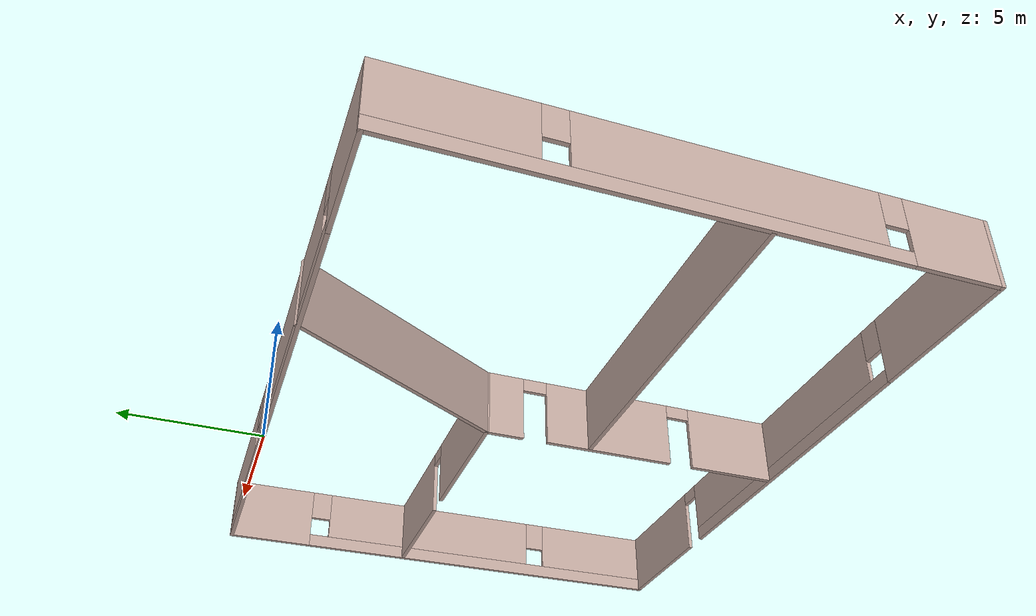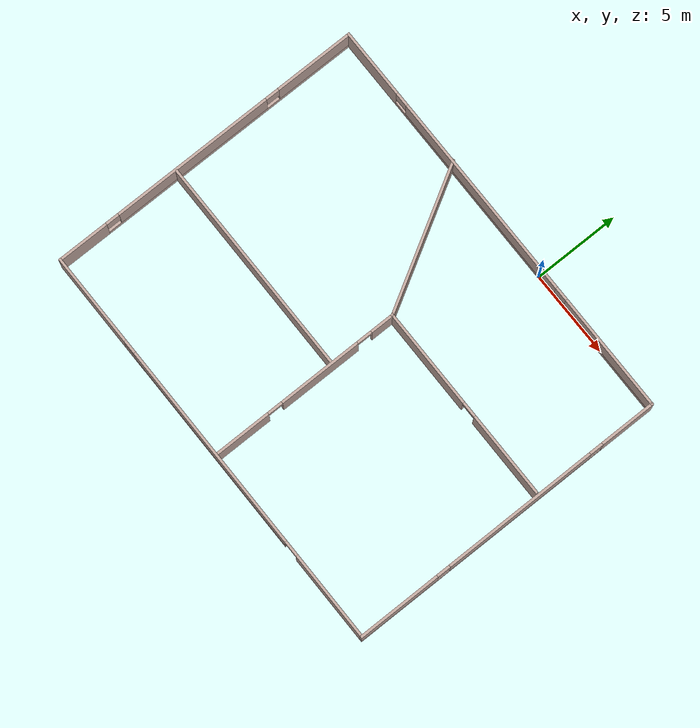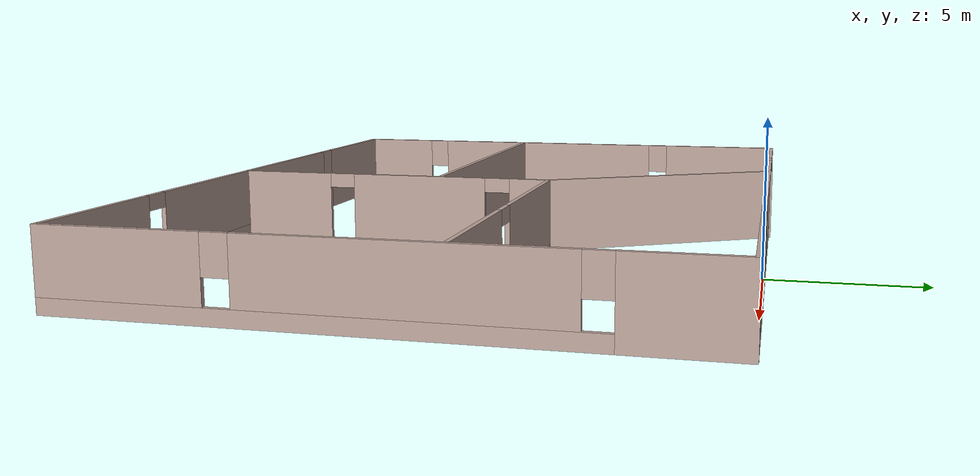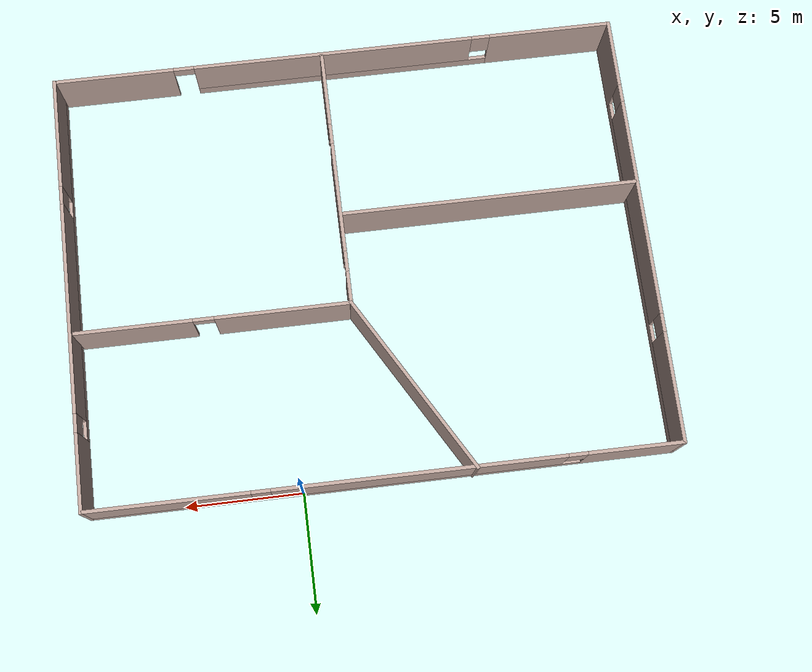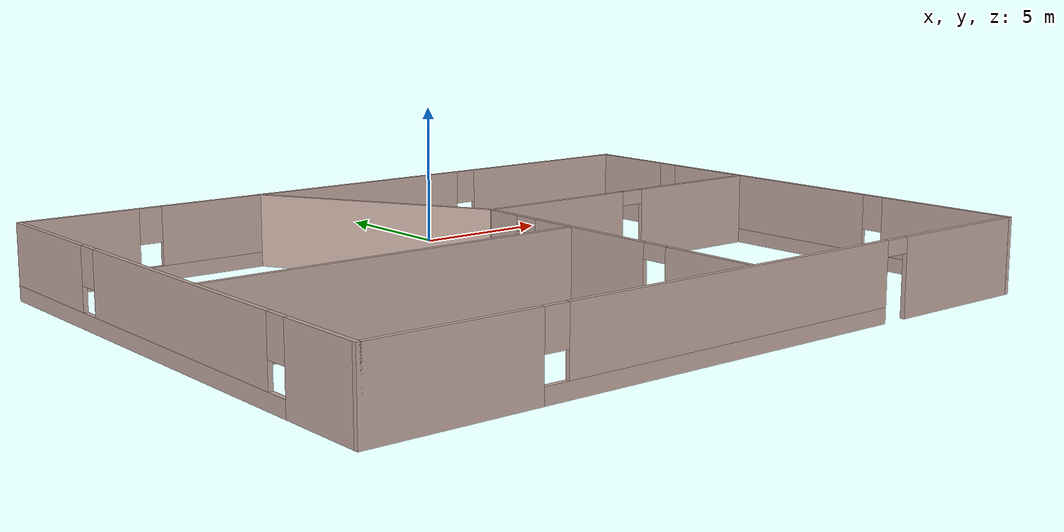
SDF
<?xml version='1.0'?>
<sdf version='1.7'>
  <model name='warehouse'>
    <pose>-3.39144 -9.38914 0 0 -0 0</pose>
    <link name='Wall_17'>
      <pose>-0.07754 -9.45806 0 0 -0 0</pose>
      <visual name='Wall_17_Visual_0'>
        <pose>-9.59338 0 1.25 0 -0 0</pose>
        <geometry>
          <box>
            <size>5.40816 0.15 2.5</size>
          </box>
        </geometry>
        <material>
          <script>
            <uri>file://media/materials/scripts/gazebo.material</uri>
            <name>Gazebo/Grey</name>
          </script>
          <ambient>0.760784 0.662745 0.627451 1</ambient>
        </material>
        <meta>
          <layer>0</layer>
        </meta>
      </visual>
      <collision name='Wall_17_Collision_0'>
        <geometry>
          <box>
            <size>5.40816 0.15 2.5</size>
          </box>
        </geometry>
        <pose>-9.59338 0 1.25 0 -0 0</pose>
      </collision>
      <visual name='Wall_17_Visual_1'>
        <pose>9.7201 0 1.25 0 -0 0</pose>
        <geometry>
          <box>
            <size>5.15472 0.15 2.5</size>
          </box>
        </geometry>
        <material>
          <script>
            <uri>file://media/materials/scripts/gazebo.material</uri>
            <name>Gazebo/Grey</name>
          </script>
          <ambient>0.760784 0.662745 0.627451 1</ambient>
        </material>
        <meta>
          <layer>0</layer>
        </meta>
      </visual>
      <collision name='Wall_17_Collision_1'>
        <geometry>
          <box>
            <size>5.15472 0.15 2.5</size>
          </box>
        </geometry>
        <pose>9.7201 0 1.25 0 -0 0</pose>
      </collision>
      <visual name='Wall_17_Visual_2'>
        <pose>-0.323279 0 0.25 0 -0 0</pose>
        <geometry>
          <box>
            <size>13.132 0.15 0.5</size>
          </box>
        </geometry>
        <material>
          <script>
            <uri>file://media/materials/scripts/gazebo.material</uri>
            <name>Gazebo/Grey</name>
          </script>
          <ambient>0.760784 0.662745 0.627451 1</ambient>
        </material>
        <meta>
          <layer>0</layer>
        </meta>
      </visual>
      <collision name='Wall_17_Collision_2'>
        <geometry>
          <box>
            <size>13.132 0.15 0.5</size>
          </box>
        </geometry>
        <pose>-0.323279 0 0.25 0 -0 0</pose>
      </collision>
      <visual name='Wall_17_Visual_3'>
        <pose>0.076721 0 1.5 0 -0 0</pose>
        <geometry>
          <box>
            <size>12.332 0.15 2</size>
          </box>
        </geometry>
        <material>
          <script>
            <uri>file://media/materials/scripts/gazebo.material</uri>
            <name>Gazebo/Grey</name>
          </script>
          <ambient>0.760784 0.662745 0.627451 1</ambient>
        </material>
        <meta>
          <layer>0</layer>
        </meta>
      </visual>
      <collision name='Wall_17_Collision_3'>
        <geometry>
          <box>
            <size>12.332 0.15 2</size>
          </box>
        </geometry>
        <pose>0.076721 0 1.5 0 -0 0</pose>
      </collision>
      <visual name='Wall_17_Visual_4'>
        <pose>-6.4893 0 1.9 0 -0 0</pose>
        <geometry>
          <box>
            <size>0.8 0.15 1.2</size>
          </box>
        </geometry>
        <material>
          <script>
            <uri>file://media/materials/scripts/gazebo.material</uri>
            <name>Gazebo/Grey</name>
          </script>
          <ambient>0.760784 0.662745 0.627451 1</ambient>
        </material>
        <meta>
          <layer>0</layer>
        </meta>
      </visual>
      <collision name='Wall_17_Collision_4'>
        <geometry>
          <box>
            <size>0.8 0.15 1.2</size>
          </box>
        </geometry>
        <pose>-6.4893 0 1.9 0 -0 0</pose>
      </collision>
      <visual name='Wall_17_Visual_5'>
        <pose>6.69274 0 2.25 0 -0 0</pose>
        <geometry>
          <box>
            <size>0.9 0.15 0.5</size>
          </box>
        </geometry>
        <material>
          <script>
            <uri>file://media/materials/scripts/gazebo.material</uri>
            <name>Gazebo/Grey</name>
          </script>
          <ambient>0.760784 0.662745 0.627451 1</ambient>
        </material>
        <meta>
          <layer>0</layer>
        </meta>
      </visual>
      <collision name='Wall_17_Collision_5'>
        <geometry>
          <box>
            <size>0.9 0.15 0.5</size>
          </box>
        </geometry>
        <pose>6.69274 0 2.25 0 -0 0</pose>
      </collision>
    </link>
    <link name='Wall_24'>
      <pose>-12.3 -0.033057 0 0 -0 1.5708</pose>
      <visual name='Wall_24_Visual_0'>
        <pose>-7.9774 0 1.25 0 -0 0</pose>
        <geometry>
          <box>
            <size>3.0452 0.15 2.5</size>
          </box>
        </geometry>
        <material>
          <script>
            <uri>file://media/materials/scripts/gazebo.material</uri>
            <name>Gazebo/Grey</name>
          </script>
          <ambient>0.760784 0.662745 0.627451 1</ambient>
        </material>
        <meta>
          <layer>0</layer>
        </meta>
      </visual>
      <collision name='Wall_24_Collision_0'>
        <geometry>
          <box>
            <size>3.0452 0.15 2.5</size>
          </box>
        </geometry>
        <pose>-7.9774 0 1.25 0 -0 0</pose>
      </collision>
      <visual name='Wall_24_Visual_1'>
        <pose>1.5226 0 0.25 0 -0 0</pose>
        <geometry>
          <box>
            <size>15.9548 0.15 0.5</size>
          </box>
        </geometry>
        <material>
          <script>
            <uri>file://media/materials/scripts/gazebo.material</uri>
            <name>Gazebo/Grey</name>
          </script>
          <ambient>0.760784 0.662745 0.627451 1</ambient>
        </material>
        <meta>
          <layer>0</layer>
        </meta>
      </visual>
      <collision name='Wall_24_Collision_1'>
        <geometry>
          <box>
            <size>15.9548 0.15 0.5</size>
          </box>
        </geometry>
        <pose>1.5226 0 0.25 0 -0 0</pose>
      </collision>
      <visual name='Wall_24_Visual_2'>
        <pose>-0.839888 0 1.5 0 -0 0</pose>
        <geometry>
          <box>
            <size>9.62982 0.15 2</size>
          </box>
        </geometry>
        <material>
          <script>
            <uri>file://media/materials/scripts/gazebo.material</uri>
            <name>Gazebo/Grey</name>
          </script>
          <ambient>0.760784 0.662745 0.627451 1</ambient>
        </material>
        <meta>
          <layer>0</layer>
        </meta>
      </visual>
      <collision name='Wall_24_Collision_2'>
        <geometry>
          <box>
            <size>9.62982 0.15 2</size>
          </box>
        </geometry>
        <pose>-0.839888 0 1.5 0 -0 0</pose>
      </collision>
      <visual name='Wall_24_Visual_3'>
        <pose>7.13751 0 1.5 0 -0 0</pose>
        <geometry>
          <box>
            <size>4.72498 0.15 2</size>
          </box>
        </geometry>
        <material>
          <script>
            <uri>file://media/materials/scripts/gazebo.material</uri>
            <name>Gazebo/Grey</name>
          </script>
          <ambient>0.760784 0.662745 0.627451 1</ambient>
        </material>
        <meta>
          <layer>0</layer>
        </meta>
      </visual>
      <collision name='Wall_24_Collision_3'>
        <geometry>
          <box>
            <size>4.72498 0.15 2</size>
          </box>
        </geometry>
        <pose>7.13751 0 1.5 0 -0 0</pose>
      </collision>
      <visual name='Wall_24_Visual_4'>
        <pose>-6.0548 0 1.9 0 -0 0</pose>
        <geometry>
          <box>
            <size>0.8 0.15 1.2</size>
          </box>
        </geometry>
        <material>
          <script>
            <uri>file://media/materials/scripts/gazebo.material</uri>
            <name>Gazebo/Grey</name>
          </script>
          <ambient>0.760784 0.662745 0.627451 1</ambient>
        </material>
        <meta>
          <layer>0</layer>
        </meta>
      </visual>
      <collision name='Wall_24_Collision_4'>
        <geometry>
          <box>
            <size>0.8 0.15 1.2</size>
          </box>
        </geometry>
        <pose>-6.0548 0 1.9 0 -0 0</pose>
      </collision>
      <visual name='Wall_24_Visual_5'>
        <pose>4.37502 0 1.9 0 -0 0</pose>
        <geometry>
          <box>
            <size>0.8 0.15 1.2</size>
          </box>
        </geometry>
        <material>
          <script>
            <uri>file://media/materials/scripts/gazebo.material</uri>
            <name>Gazebo/Grey</name>
          </script>
          <ambient>0.760784 0.662745 0.627451 1</ambient>
        </material>
        <meta>
          <layer>0</layer>
        </meta>
      </visual>
      <collision name='Wall_24_Collision_5'>
        <geometry>
          <box>
            <size>0.8 0.15 1.2</size>
          </box>
        </geometry>
        <pose>4.37502 0 1.9 0 -0 0</pose>
      </collision>
    </link>
    <link name='Wall_25'>
      <pose>0 9.39194 0 0 -0 0</pose>
      <visual name='Wall_25_Visual_0'>
        <pose>-10.349 0 1.25 0 -0 0</pose>
        <geometry>
          <box>
            <size>4.05199 0.15 2.5</size>
          </box>
        </geometry>
        <material>
          <script>
            <uri>file://media/materials/scripts/gazebo.material</uri>
            <name>Gazebo/Grey</name>
          </script>
          <ambient>0.760784 0.662745 0.627451 1</ambient>
        </material>
        <meta>
          <layer>0</layer>
        </meta>
      </visual>
      <collision name='Wall_25_Collision_0'>
        <geometry>
          <box>
            <size>4.05199 0.15 2.5</size>
          </box>
        </geometry>
        <pose>-10.349 0 1.25 0 -0 0</pose>
      </collision>
      <visual name='Wall_25_Visual_1'>
        <pose>2.02599 0 0.25 0 -0 0</pose>
        <geometry>
          <box>
            <size>20.698 0.15 0.5</size>
          </box>
        </geometry>
        <material>
          <script>
            <uri>file://media/materials/scripts/gazebo.material</uri>
            <name>Gazebo/Grey</name>
          </script>
          <ambient>0.760784 0.662745 0.627451 1</ambient>
        </material>
        <meta>
          <layer>0</layer>
        </meta>
      </visual>
      <collision name='Wall_25_Collision_1'>
        <geometry>
          <box>
            <size>20.698 0.15 0.5</size>
          </box>
        </geometry>
        <pose>2.02599 0 0.25 0 -0 0</pose>
      </collision>
      <visual name='Wall_25_Visual_2'>
        <pose>-1.44049 0 1.5 0 -0 0</pose>
        <geometry>
          <box>
            <size>12.1651 0.15 2</size>
          </box>
        </geometry>
        <material>
          <script>
            <uri>file://media/materials/scripts/gazebo.material</uri>
            <name>Gazebo/Grey</name>
          </script>
          <ambient>0.760784 0.662745 0.627451 1</ambient>
        </material>
        <meta>
          <layer>0</layer>
        </meta>
      </visual>
      <collision name='Wall_25_Collision_2'>
        <geometry>
          <box>
            <size>12.1651 0.15 2</size>
          </box>
        </geometry>
        <pose>-1.44049 0 1.5 0 -0 0</pose>
      </collision>
      <visual name='Wall_25_Visual_3'>
        <pose>8.90852 0 1.5 0 -0 0</pose>
        <geometry>
          <box>
            <size>6.93296 0.15 2</size>
          </box>
        </geometry>
        <material>
          <script>
            <uri>file://media/materials/scripts/gazebo.material</uri>
            <name>Gazebo/Grey</name>
          </script>
          <ambient>0.760784 0.662745 0.627451 1</ambient>
        </material>
        <meta>
          <layer>0</layer>
        </meta>
      </visual>
      <collision name='Wall_25_Collision_3'>
        <geometry>
          <box>
            <size>6.93296 0.15 2</size>
          </box>
        </geometry>
        <pose>8.90852 0 1.5 0 -0 0</pose>
      </collision>
      <visual name='Wall_25_Visual_4'>
        <pose>-7.92302 0 1.9 0 -0 0</pose>
        <geometry>
          <box>
            <size>0.8 0.15 1.2</size>
          </box>
        </geometry>
        <material>
          <script>
            <uri>file://media/materials/scripts/gazebo.material</uri>
            <name>Gazebo/Grey</name>
          </script>
          <ambient>0.760784 0.662745 0.627451 1</ambient>
        </material>
        <meta>
          <layer>0</layer>
        </meta>
      </visual>
      <collision name='Wall_25_Collision_4'>
        <geometry>
          <box>
            <size>0.8 0.15 1.2</size>
          </box>
        </geometry>
        <pose>-7.92302 0 1.9 0 -0 0</pose>
      </collision>
      <visual name='Wall_25_Visual_5'>
        <pose>5.04204 0 1.9 0 -0 0</pose>
        <geometry>
          <box>
            <size>0.8 0.15 1.2</size>
          </box>
        </geometry>
        <material>
          <script>
            <uri>file://media/materials/scripts/gazebo.material</uri>
            <name>Gazebo/Grey</name>
          </script>
          <ambient>0.760784 0.662745 0.627451 1</ambient>
        </material>
        <meta>
          <layer>0</layer>
        </meta>
      </visual>
      <collision name='Wall_25_Collision_5'>
        <geometry>
          <box>
            <size>0.8 0.15 1.2</size>
          </box>
        </geometry>
        <pose>5.04204 0 1.9 0 -0 0</pose>
      </collision>
    </link>
    <link name='Wall_26'>
      <pose>12.3 -0.033057 0 0 -0 -1.5708</pose>
      <visual name='Wall_26_Visual_0'>
        <pose>-7.83553 0 1.25 0 -0 0</pose>
        <geometry>
          <box>
            <size>3.32894 0.15 2.5</size>
          </box>
        </geometry>
        <material>
          <script>
            <uri>file://media/materials/scripts/gazebo.material</uri>
            <name>Gazebo/Grey</name>
          </script>
          <ambient>0.760784 0.662745 0.627451 1</ambient>
        </material>
        <meta>
          <layer>0</layer>
        </meta>
      </visual>
      <collision name='Wall_26_Collision_0'>
        <geometry>
          <box>
            <size>3.32894 0.15 2.5</size>
          </box>
        </geometry>
        <pose>-7.83553 0 1.25 0 -0 0</pose>
      </collision>
      <visual name='Wall_26_Visual_1'>
        <pose>1.66447 0 0.25 0 -0 0</pose>
        <geometry>
          <box>
            <size>15.6711 0.15 0.5</size>
          </box>
        </geometry>
        <material>
          <script>
            <uri>file://media/materials/scripts/gazebo.material</uri>
            <name>Gazebo/Grey</name>
          </script>
          <ambient>0.760784 0.662745 0.627451 1</ambient>
        </material>
        <meta>
          <layer>0</layer>
        </meta>
      </visual>
      <collision name='Wall_26_Collision_1'>
        <geometry>
          <box>
            <size>15.6711 0.15 0.5</size>
          </box>
        </geometry>
        <pose>1.66447 0 0.25 0 -0 0</pose>
      </collision>
      <visual name='Wall_26_Visual_2'>
        <pose>-0.807457 0 1.5 0 -0 0</pose>
        <geometry>
          <box>
            <size>9.12721 0.15 2</size>
          </box>
        </geometry>
        <material>
          <script>
            <uri>file://media/materials/scripts/gazebo.material</uri>
            <name>Gazebo/Grey</name>
          </script>
          <ambient>0.760784 0.662745 0.627451 1</ambient>
        </material>
        <meta>
          <layer>0</layer>
        </meta>
      </visual>
      <collision name='Wall_26_Collision_2'>
        <geometry>
          <box>
            <size>9.12721 0.15 2</size>
          </box>
        </geometry>
        <pose>-0.807457 0 1.5 0 -0 0</pose>
      </collision>
      <visual name='Wall_26_Visual_3'>
        <pose>7.02808 0 1.5 0 -0 0</pose>
        <geometry>
          <box>
            <size>4.94385 0.15 2</size>
          </box>
        </geometry>
        <material>
          <script>
            <uri>file://media/materials/scripts/gazebo.material</uri>
            <name>Gazebo/Grey</name>
          </script>
          <ambient>0.760784 0.662745 0.627451 1</ambient>
        </material>
        <meta>
          <layer>0</layer>
        </meta>
      </visual>
      <collision name='Wall_26_Collision_3'>
        <geometry>
          <box>
            <size>4.94385 0.15 2</size>
          </box>
        </geometry>
        <pose>7.02808 0 1.5 0 -0 0</pose>
      </collision>
      <visual name='Wall_26_Visual_4'>
        <pose>-5.77106 0 1.9 0 -0 0</pose>
        <geometry>
          <box>
            <size>0.8 0.15 1.2</size>
          </box>
        </geometry>
        <material>
          <script>
            <uri>file://media/materials/scripts/gazebo.material</uri>
            <name>Gazebo/Grey</name>
          </script>
          <ambient>0.760784 0.662745 0.627451 1</ambient>
        </material>
        <meta>
          <layer>0</layer>
        </meta>
      </visual>
      <collision name='Wall_26_Collision_4'>
        <geometry>
          <box>
            <size>0.8 0.15 1.2</size>
          </box>
        </geometry>
        <pose>-5.77106 0 1.9 0 -0 0</pose>
      </collision>
      <visual name='Wall_26_Visual_5'>
        <pose>4.15615 0 1.9 0 -0 0</pose>
        <geometry>
          <box>
            <size>0.8 0.15 1.2</size>
          </box>
        </geometry>
        <material>
          <script>
            <uri>file://media/materials/scripts/gazebo.material</uri>
            <name>Gazebo/Grey</name>
          </script>
          <ambient>0.760784 0.662745 0.627451 1</ambient>
        </material>
        <meta>
          <layer>0</layer>
        </meta>
      </visual>
      <collision name='Wall_26_Collision_5'>
        <geometry>
          <box>
            <size>0.8 0.15 1.2</size>
          </box>
        </geometry>
        <pose>4.15615 0 1.9 0 -0 0</pose>
      </collision>
    </link>
    <link name='Wall_33'>
      <collision name='Wall_33_Collision'>
        <geometry>
          <box>
            <size>8.75 0.15 2.5</size>
          </box>
        </geometry>
        <pose>0 0 1.25 0 -0 0</pose>
      </collision>
      <visual name='Wall_33_Visual'>
        <pose>0 0 1.25 0 -0 0</pose>
        <geometry>
          <box>
            <size>8.75 0.15 2.5</size>
          </box>
        </geometry>
        <material>
          <script>
            <uri>file://media/materials/scripts/gazebo.material</uri>
            <name>Gazebo/Grey</name>
          </script>
          <ambient>0.760784 0.662745 0.627451 1</ambient>
        </material>
        <meta>
          <layer>0</layer>
        </meta>
      </visual>
      <pose>-1.63635 5.7067 0 0 -0 -1.0472</pose>
    </link>
    <link name='Wall_34'>
      <pose>6.31365 1.98279 0 0 -0 0</pose>
      <visual name='Wall_34_Visual_0'>
        <pose>-2.95666 0 1.25 0 -0 0</pose>
        <geometry>
          <box>
            <size>5.83669 0.15 2.5</size>
          </box>
        </geometry>
        <material>
          <script>
            <uri>file://media/materials/scripts/gazebo.material</uri>
            <name>Gazebo/Grey</name>
          </script>
          <ambient>0.760784 0.662745 0.627451 1</ambient>
        </material>
        <meta>
          <layer>0</layer>
        </meta>
      </visual>
      <collision name='Wall_34_Collision_0'>
        <geometry>
          <box>
            <size>5.83669 0.15 2.5</size>
          </box>
        </geometry>
        <pose>-2.95666 0 1.25 0 -0 0</pose>
      </collision>
      <visual name='Wall_34_Visual_1'>
        <pose>3.36834 0 1.25 0 -0 0</pose>
        <geometry>
          <box>
            <size>5.01331 0.15 2.5</size>
          </box>
        </geometry>
        <material>
          <script>
            <uri>file://media/materials/scripts/gazebo.material</uri>
            <name>Gazebo/Grey</name>
          </script>
          <ambient>0.760784 0.662745 0.627451 1</ambient>
        </material>
        <meta>
          <layer>0</layer>
        </meta>
      </visual>
      <collision name='Wall_34_Collision_1'>
        <geometry>
          <box>
            <size>5.01331 0.15 2.5</size>
          </box>
        </geometry>
        <pose>3.36834 0 1.25 0 -0 0</pose>
      </collision>
      <visual name='Wall_34_Visual_2'>
        <pose>0.411689 0 2.25 0 -0 0</pose>
        <geometry>
          <box>
            <size>0.9 0.15 0.5</size>
          </box>
        </geometry>
        <material>
          <script>
            <uri>file://media/materials/scripts/gazebo.material</uri>
            <name>Gazebo/Grey</name>
          </script>
          <ambient>0.760784 0.662745 0.627451 1</ambient>
        </material>
        <meta>
          <layer>0</layer>
        </meta>
      </visual>
      <collision name='Wall_34_Collision_2'>
        <geometry>
          <box>
            <size>0.9 0.15 0.5</size>
          </box>
        </geometry>
        <pose>0.411689 0 2.25 0 -0 0</pose>
      </collision>
    </link>
    <link name='Wall_36'>
      <pose>0.51365 -3.69221 0 0 -0 -1.5708</pose>
      <visual name='Wall_36_Visual_0'>
        <pose>-5.02122 0 1.25 0 -0 0</pose>
        <geometry>
          <box>
            <size>1.45756 0.15 2.5</size>
          </box>
        </geometry>
        <material>
          <script>
            <uri>file://media/materials/scripts/gazebo.material</uri>
            <name>Gazebo/Grey</name>
          </script>
          <ambient>0.760784 0.662745 0.627451 1</ambient>
        </material>
        <meta>
          <layer>0</layer>
        </meta>
      </visual>
      <collision name='Wall_36_Collision_0'>
        <geometry>
          <box>
            <size>1.45756 0.15 2.5</size>
          </box>
        </geometry>
        <pose>-5.02122 0 1.25 0 -0 0</pose>
      </collision>
      <visual name='Wall_36_Visual_1'>
        <pose>-0.941401 0 1.25 0 -0 0</pose>
        <geometry>
          <box>
            <size>4.90208 0.15 2.5</size>
          </box>
        </geometry>
        <material>
          <script>
            <uri>file://media/materials/scripts/gazebo.material</uri>
            <name>Gazebo/Grey</name>
          </script>
          <ambient>0.760784 0.662745 0.627451 1</ambient>
        </material>
        <meta>
          <layer>0</layer>
        </meta>
      </visual>
      <collision name='Wall_36_Collision_1'>
        <geometry>
          <box>
            <size>4.90208 0.15 2.5</size>
          </box>
        </geometry>
        <pose>-0.941401 0 1.25 0 -0 0</pose>
      </collision>
      <visual name='Wall_36_Visual_2'>
        <pose>4.07982 0 1.25 0 -0 0</pose>
        <geometry>
          <box>
            <size>3.34036 0.15 2.5</size>
          </box>
        </geometry>
        <material>
          <script>
            <uri>file://media/materials/scripts/gazebo.material</uri>
            <name>Gazebo/Grey</name>
          </script>
          <ambient>0.760784 0.662745 0.627451 1</ambient>
        </material>
        <meta>
          <layer>0</layer>
        </meta>
      </visual>
      <collision name='Wall_36_Collision_2'>
        <geometry>
          <box>
            <size>3.34036 0.15 2.5</size>
          </box>
        </geometry>
        <pose>4.07982 0 1.25 0 -0 0</pose>
      </collision>
      <visual name='Wall_36_Visual_3'>
        <pose>-3.84244 0 2.25 0 -0 0</pose>
        <geometry>
          <box>
            <size>0.9 0.15 0.5</size>
          </box>
        </geometry>
        <material>
          <script>
            <uri>file://media/materials/scripts/gazebo.material</uri>
            <name>Gazebo/Grey</name>
          </script>
          <ambient>0.760784 0.662745 0.627451 1</ambient>
        </material>
        <meta>
          <layer>0</layer>
        </meta>
      </visual>
      <collision name='Wall_36_Collision_3'>
        <geometry>
          <box>
            <size>0.9 0.15 0.5</size>
          </box>
        </geometry>
        <pose>-3.84244 0 2.25 0 -0 0</pose>
      </collision>
      <visual name='Wall_36_Visual_4'>
        <pose>1.95964 0 2.25 0 -0 0</pose>
        <geometry>
          <box>
            <size>0.9 0.15 0.5</size>
          </box>
        </geometry>
        <material>
          <script>
            <uri>file://media/materials/scripts/gazebo.material</uri>
            <name>Gazebo/Grey</name>
          </script>
          <ambient>0.760784 0.662745 0.627451 1</ambient>
        </material>
        <meta>
          <layer>0</layer>
        </meta>
      </visual>
      <collision name='Wall_36_Collision_4'>
        <geometry>
          <box>
            <size>0.9 0.15 0.5</size>
          </box>
        </geometry>
        <pose>1.95964 0 2.25 0 -0 0</pose>
      </collision>
    </link>
    <link name='Wall_38'>
      <collision name='Wall_38_Collision'>
        <geometry>
          <box>
            <size>12.75 0.15 2.5</size>
          </box>
        </geometry>
        <pose>0 0 1.25 0 -0 0</pose>
      </collision>
      <visual name='Wall_38_Visual'>
        <pose>0 0 1.25 0 -0 0</pose>
        <geometry>
          <box>
            <size>12.75 0.15 2.5</size>
          </box>
        </geometry>
        <material>
          <script>
            <uri>file://media/materials/scripts/gazebo.material</uri>
            <name>Gazebo/Grey</name>
          </script>
          <ambient>0.760784 0.662745 0.627451 1</ambient>
        </material>
        <meta>
          <layer>0</layer>
        </meta>
      </visual>
      <pose>-5.90932 -1.96128 0 0 -0 3.14159</pose>
    </link>
    <static>1</static>
  </model>
</sdf>
